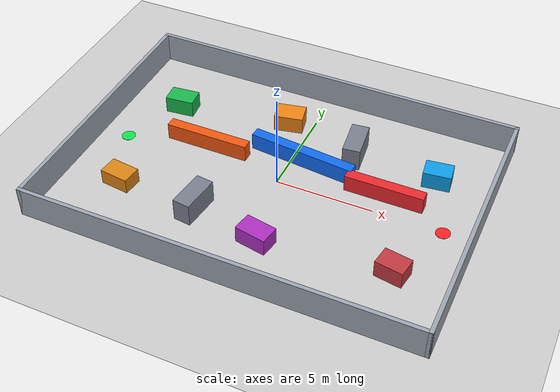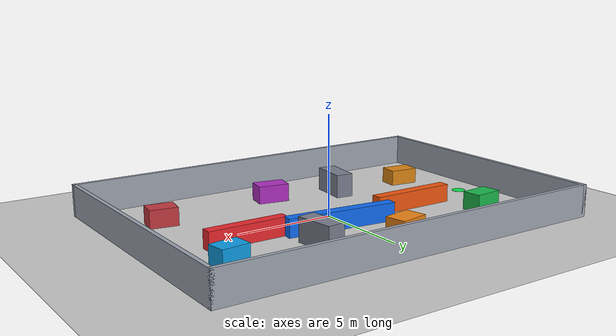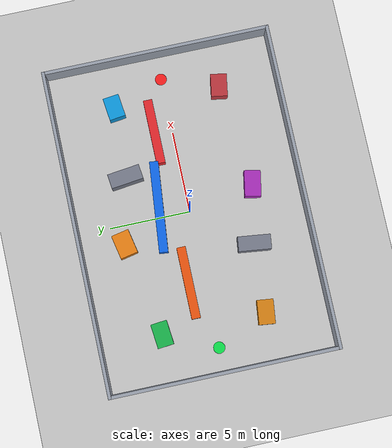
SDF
<?xml version="1.0"?>
<sdf version="1.6">
  <world name="indoor_obstacle_course_cross_scene_01">
    <include>
      <uri>model://ground_plane</uri>
    </include>
    <include>
      <uri>model://sun</uri>
    </include>

    <scene>
      <ambient>0.65 0.65 0.65 1</ambient>
      <background>0.82 0.86 0.90 1</background>
      <shadows>true</shadows>
      <grid>false</grid>
    </scene>

    <physics type="ode">
      <real_time_update_rate>1000.0</real_time_update_rate>
      <max_step_size>0.001</max_step_size>
      <real_time_factor>1</real_time_factor>
      <ode>
        <solver>
          <type>quick</type>
          <iters>150</iters>
          <sor>1.4</sor>
        </solver>
        <constraints>
          <cfm>0.00001</cfm>
          <erp>0.2</erp>
          <contact_max_correcting_vel>2000</contact_max_correcting_vel>
          <contact_surface_layer>0.01</contact_surface_layer>
        </constraints>
      </ode>
    </physics>

    <!-- Same room envelope as the frozen baseline; only the interior layout changes. -->
    <plugin name="gazebo_ros_state" filename="libgazebo_ros_state.so">
      <ros>
        <namespace>/gazebo</namespace>
        <remapping>model_states:=model_states</remapping>
      </ros>
      <update_rate>30.0</update_rate>
    </plugin>

    <model name="wall_north">
      <static>true</static>
      <pose>0 7.0 0.8 0 0 0</pose>
      <link name="link">
        <collision name="collision"><geometry><box><size>20.2 0.2 1.6</size></box></geometry></collision>
        <visual name="visual"><geometry><box><size>20.2 0.2 1.6</size></box></geometry>
          <material><ambient>0.55 0.58 0.62 1</ambient><diffuse>0.62 0.65 0.70 1</diffuse></material></visual>
      </link>
    </model>
    <model name="wall_south">
      <static>true</static>
      <pose>0 -7.0 0.8 0 0 0</pose>
      <link name="link">
        <collision name="collision"><geometry><box><size>20.2 0.2 1.6</size></box></geometry></collision>
        <visual name="visual"><geometry><box><size>20.2 0.2 1.6</size></box></geometry>
          <material><ambient>0.55 0.58 0.62 1</ambient><diffuse>0.62 0.65 0.70 1</diffuse></material></visual>
      </link>
    </model>
    <model name="wall_east">
      <static>true</static>
      <pose>10.0 0 0.8 0 0 0</pose>
      <link name="link">
        <collision name="collision"><geometry><box><size>0.2 14.2 1.6</size></box></geometry></collision>
        <visual name="visual"><geometry><box><size>0.2 14.2 1.6</size></box></geometry>
          <material><ambient>0.55 0.58 0.62 1</ambient><diffuse>0.62 0.65 0.70 1</diffuse></material></visual>
      </link>
    </model>
    <model name="wall_west">
      <static>true</static>
      <pose>-10.0 0 0.8 0 0 0</pose>
      <link name="link">
        <collision name="collision"><geometry><box><size>0.2 14.2 1.6</size></box></geometry></collision>
        <visual name="visual"><geometry><box><size>0.2 14.2 1.6</size></box></geometry>
          <material><ambient>0.55 0.58 0.62 1</ambient><diffuse>0.62 0.65 0.70 1</diffuse></material></visual>
      </link>
    </model>

    <!-- Scene 01: the first bar is vertical, and the remaining bars are shifted
         so the old large-scene corridor is no longer the natural route. -->
    <model name="barrier_west">
      <static>true</static>
      <pose>-4.3 1.0 0.45 0 0 1.5708</pose>
      <link name="link">
        <collision name="collision"><geometry><box><size>0.55 4.4 0.9</size></box></geometry></collision>
        <visual name="visual"><geometry><box><size>0.55 4.4 0.9</size></box></geometry>
          <material><ambient>0.85 0.28 0.05 1</ambient><diffuse>0.95 0.34 0.06 1</diffuse></material></visual>
      </link>
    </model>
    <model name="barrier_center">
      <static>true</static>
      <pose>0.6 1.8 0.45 0 0 -0.10</pose>
      <link name="link">
        <collision name="collision"><geometry><box><size>5.6 0.55 0.9</size></box></geometry></collision>
        <visual name="visual"><geometry><box><size>5.6 0.55 0.9</size></box></geometry>
          <material><ambient>0.08 0.32 0.78 1</ambient><diffuse>0.06 0.42 0.95 1</diffuse></material></visual>
      </link>
    </model>
    <model name="barrier_east">
      <static>true</static>
      <pose>5.2 1.1 0.45 0 0 1.5708</pose>
      <link name="link">
        <collision name="collision"><geometry><box><size>0.55 4.0 0.9</size></box></geometry></collision>
        <visual name="visual"><geometry><box><size>0.55 4.0 0.9</size></box></geometry>
          <material><ambient>0.78 0.12 0.14 1</ambient><diffuse>0.92 0.16 0.18 1</diffuse></material></visual>
      </link>
    </model>

    <model name="crate_west_north">
      <static>true</static>
      <pose>-7.0 3.2 0.45 0 0 0.10</pose>
      <link name="link"><collision name="collision"><geometry><box><size>1.5 1.0 0.9</size></box></geometry></collision>
        <visual name="visual"><geometry><box><size>1.5 1.0 0.9</size></box></geometry>
          <material><ambient>0.08 0.58 0.25 1</ambient><diffuse>0.10 0.72 0.30 1</diffuse></material></visual></link>
    </model>
    <model name="crate_west_south">
      <static>true</static>
      <pose>-7.0 -3.2 0.4 0 0 -0.12</pose>
      <link name="link"><collision name="collision"><geometry><box><size>1.5 1.0 0.8</size></box></geometry></collision>
        <visual name="visual"><geometry><box><size>1.5 1.0 0.8</size></box></geometry>
          <material><ambient>0.72 0.42 0.06 1</ambient><diffuse>0.86 0.52 0.08 1</diffuse></material></visual></link>
    </model>
    <model name="crate_center_north">
      <static>true</static>
      <pose>-1.2 4.3 0.45 0 0 0.20</pose>
      <link name="link"><collision name="collision"><geometry><box><size>1.5 1.1 0.9</size></box></geometry></collision>
        <visual name="visual"><geometry><box><size>1.5 1.1 0.9</size></box></geometry>
          <material><ambient>0.78 0.40 0.06 1</ambient><diffuse>0.94 0.52 0.08 1</diffuse></material></visual></link>
    </model>
    <model name="crate_center_south">
      <static>true</static>
      <pose>0.8 -4.1 0.45 0 0 -0.18</pose>
      <link name="link"><collision name="collision"><geometry><box><size>1.6 1.0 0.9</size></box></geometry></collision>
        <visual name="visual"><geometry><box><size>1.6 1.0 0.9</size></box></geometry>
          <material><ambient>0.52 0.12 0.58 1</ambient><diffuse>0.68 0.18 0.75 1</diffuse></material></visual></link>
    </model>
    <model name="crate_east_north">
      <static>true</static>
      <pose>7.2 3.2 0.45 0 0 0.12</pose>
      <link name="link"><collision name="collision"><geometry><box><size>1.4 1.0 0.9</size></box></geometry></collision>
        <visual name="visual"><geometry><box><size>1.4 1.0 0.9</size></box></geometry>
          <material><ambient>0.04 0.48 0.72 1</ambient><diffuse>0.05 0.62 0.90 1</diffuse></material></visual></link>
    </model>
    <model name="crate_east_south">
      <static>true</static>
      <pose>7.2 -3.4 0.45 0 0 -0.16</pose>
      <link name="link"><collision name="collision"><geometry><box><size>1.4 1.0 0.9</size></box></geometry></collision>
        <visual name="visual"><geometry><box><size>1.4 1.0 0.9</size></box></geometry>
          <material><ambient>0.58 0.16 0.20 1</ambient><diffuse>0.76 0.22 0.25 1</diffuse></material></visual></link>
    </model>
    <model name="pillar_center_north">
      <static>true</static>
      <pose>2.8 3.4 0.6 0 0 0.12</pose>
      <link name="link"><collision name="collision"><geometry><box><size>0.9 2.0 1.2</size></box></geometry></collision>
        <visual name="visual"><geometry><box><size>0.9 2.0 1.2</size></box></geometry>
          <material><ambient>0.36 0.36 0.40 1</ambient><diffuse>0.48 0.50 0.56 1</diffuse></material></visual></link>
    </model>
    <model name="pillar_center_south">
      <static>true</static>
      <pose>-2.8 -3.4 0.6 0 0 -0.12</pose>
      <link name="link"><collision name="collision"><geometry><box><size>0.9 2.0 1.2</size></box></geometry></collision>
        <visual name="visual"><geometry><box><size>0.9 2.0 1.2</size></box></geometry>
          <material><ambient>0.36 0.36 0.40 1</ambient><diffuse>0.48 0.50 0.56 1</diffuse></material></visual></link>
    </model>

    <!-- Keep the documented comparison endpoints unchanged. -->
    <model name="start_marker">
      <static>true</static>
      <pose>-8.5 0.0 0.006 0 0 0</pose>
      <link name="link"><visual name="visual"><geometry><cylinder><radius>0.36</radius><length>0.012</length></cylinder></geometry>
        <material><ambient>0.05 0.75 0.25 1</ambient><diffuse>0.05 0.90 0.30 1</diffuse></material></visual></link>
    </model>
    <model name="goal_marker">
      <static>true</static>
      <pose>8.5 0.0 0.007 0 0 0</pose>
      <link name="link"><visual name="visual"><geometry><cylinder><radius>0.36</radius><length>0.014</length></cylinder></geometry>
        <material><ambient>0.90 0.08 0.08 1</ambient><diffuse>1.0 0.12 0.12 1</diffuse></material></visual></link>
    </model>

    <gui fullscreen="0">
      <camera name="user_camera">
        <pose>0 0 22.0 0 1.5708 0</pose>
        <view_controller>orbit</view_controller>
        <projection_type>perspective</projection_type>
      </camera>
    </gui>
  </world>
</sdf>
